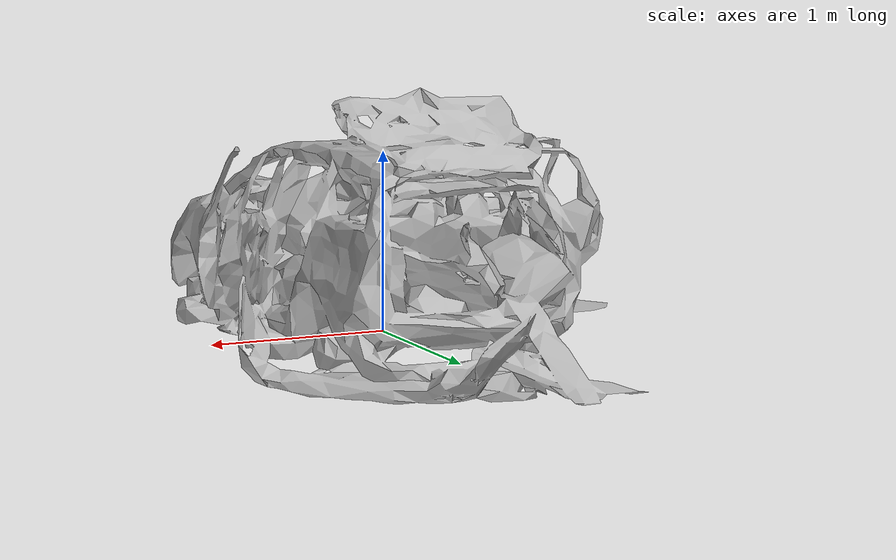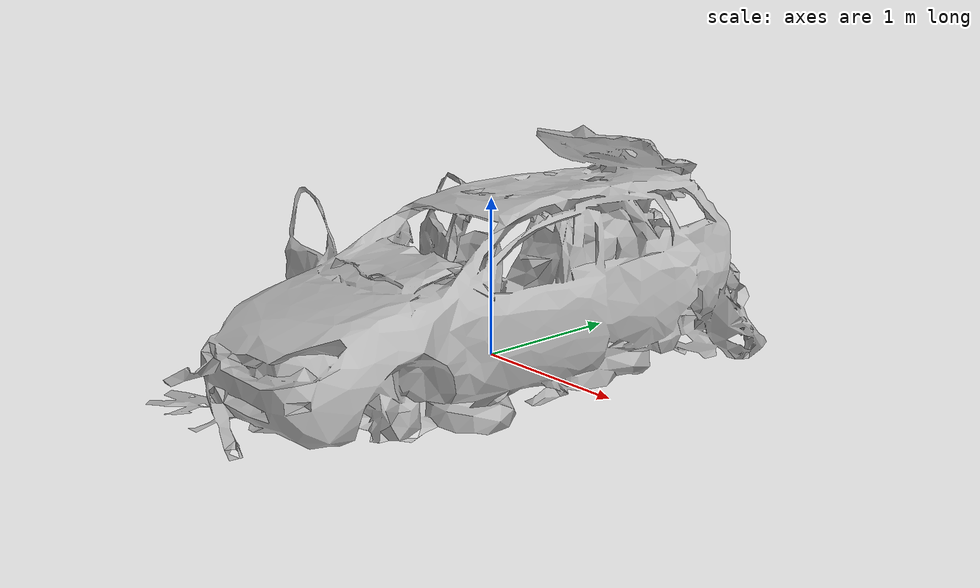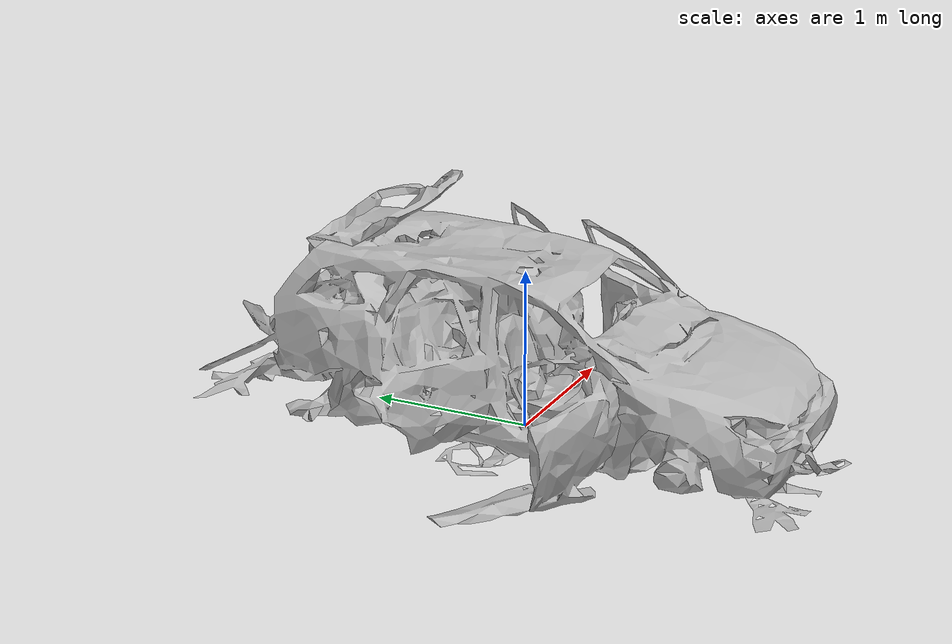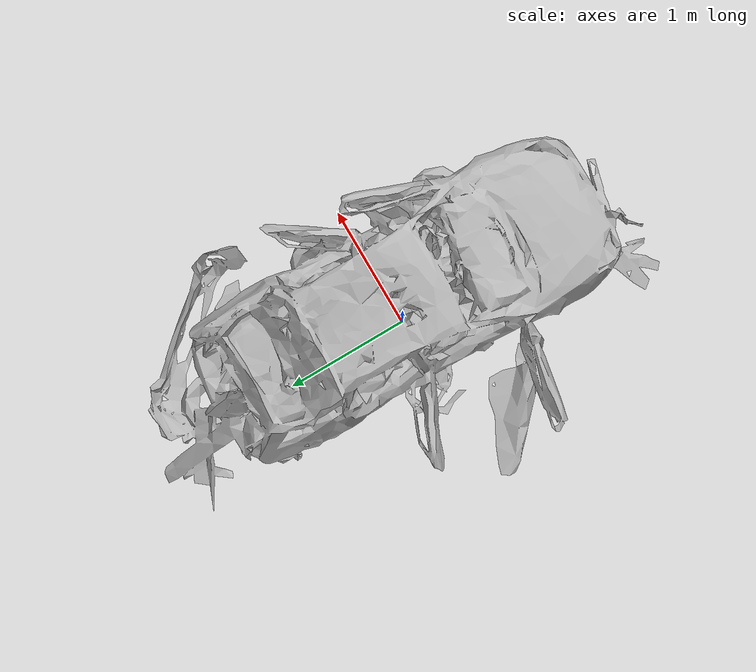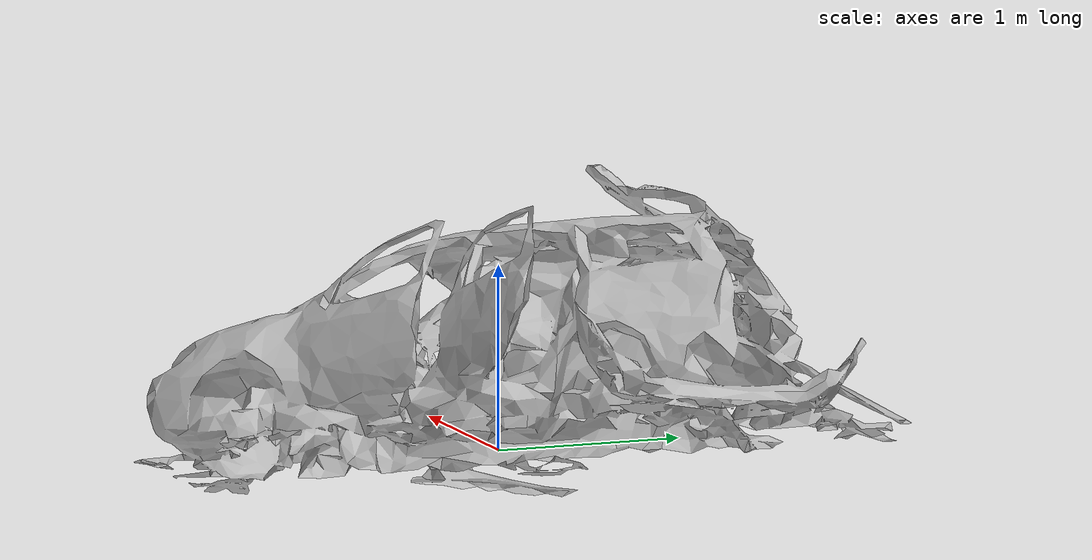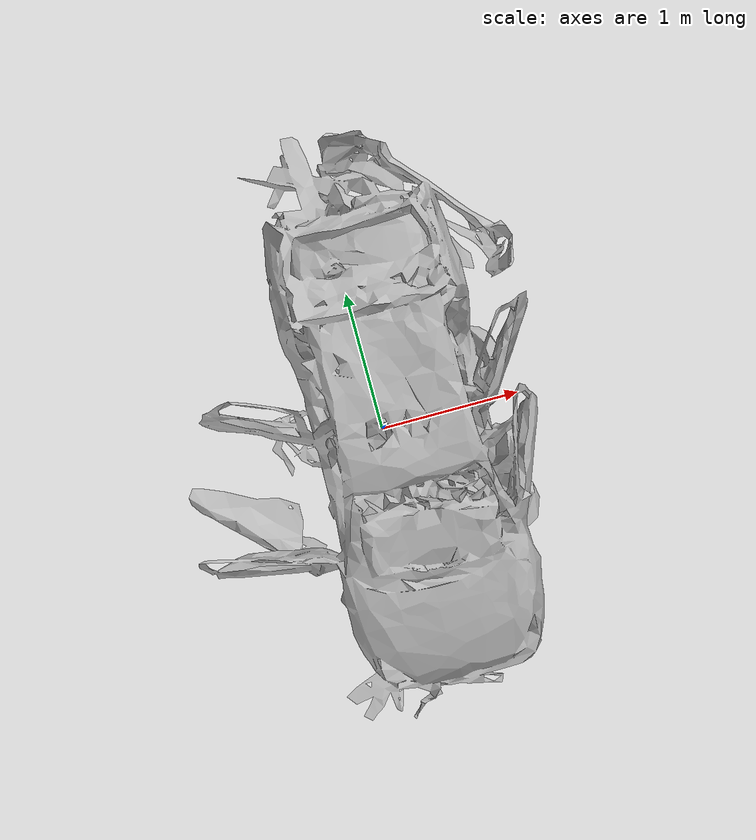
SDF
<?xml version="1.0"?>
<sdf version="1.9">
  <model name="car_wrecked">
    <static>true</static>
    <link name="link">
      <visual name="visual">
        <!-- Source OBJ is Y-up; rotate it into Gazebo's Z-up frame. -->
        <pose>0 0 0 1.57079632679 0 0</pose>
        <geometry>
          <mesh>
            <uri>model://cmra_models/car_wrecked/car_wrecked.obj</uri>
            <scale>0.06 0.06 0.06</scale>
          </mesh>
        </geometry>
      </visual>
    </link>
  </model>
</sdf>
